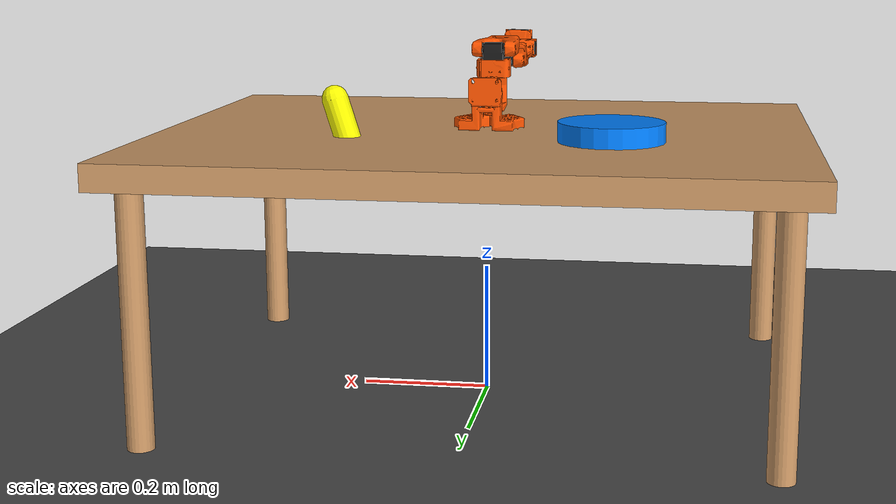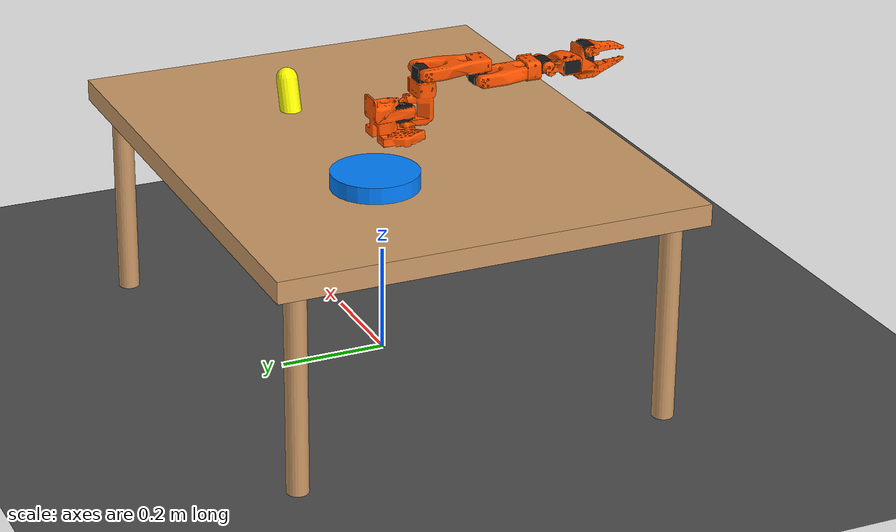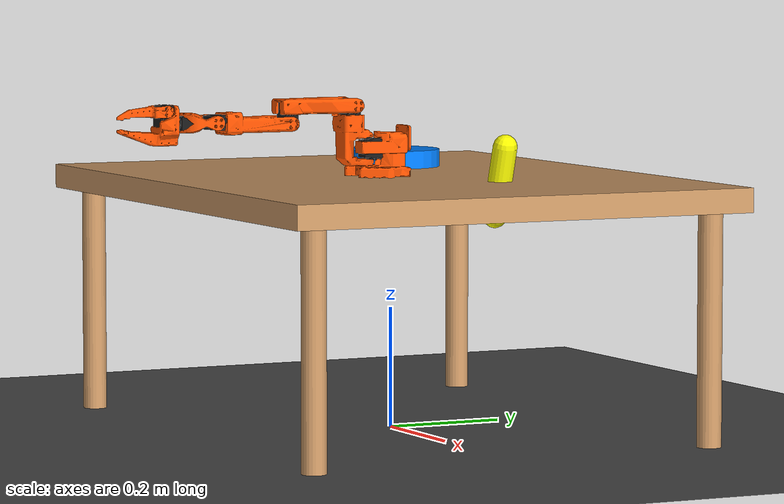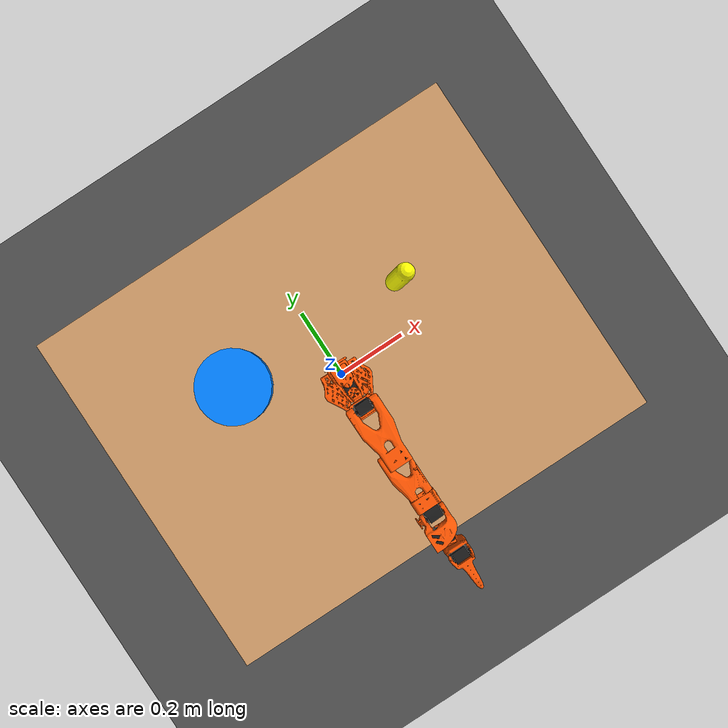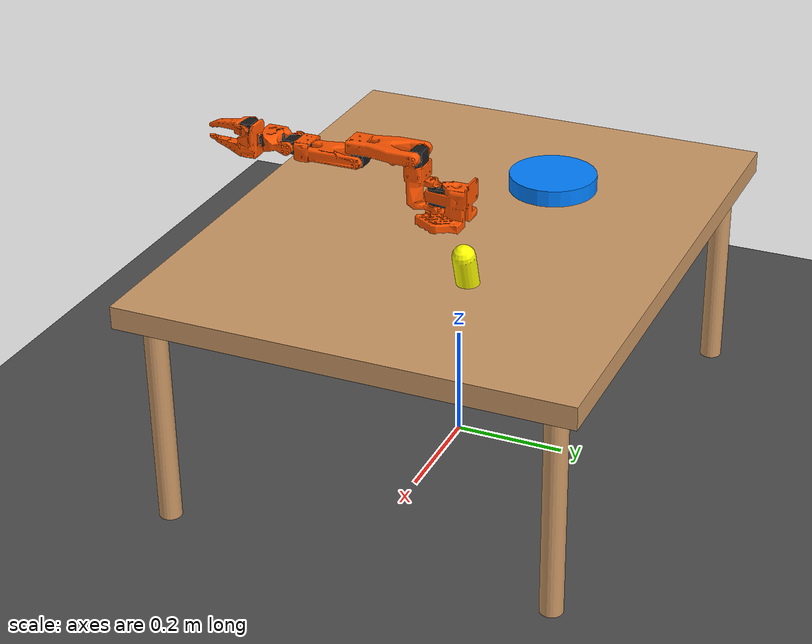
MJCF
<mujoco model="so_arm100">
  <compiler angle="radian" meshdir="assets/"/>

  <option impratio="10" cone="elliptic"/>

  <size nkey="1"/>

  <default>
    <default class="so_arm100">
      <joint armature="0.1" frictionloss="0.1"/>
      <general ctrlrange="-3.14158 3.14158" forcerange="-35 35" biastype="affine" gainprm="50" biasprm="0 -50 1"/>
      <default class="Rotation">
        <joint range="-2.2 2.2"/>
      </default>
      <default class="Pitch">
        <joint range="-3.14158 0.2"/>
      </default>
      <default class="Elbow">
        <joint range="0 3.14158"/>
      </default>
      <default class="Wrist_Pitch">
        <joint range="-2 1.8"/>
      </default>
      <default class="Wrist_Roll">
        <joint range="-3.14158 3.14158"/>
      </default>
      <default class="Jaw">
        <joint range="-0.2 2"/>
      </default>
      <default class="visual">
        <geom type="mesh" contype="0" conaffinity="0" group="2" density="0" material="orange"/>
        <default class="motor_visual">
          <geom material="black"/>
        </default>
      </default>
      <default class="collision">
        <geom type="mesh" group="3"/>
        <default class="finger_collision">
          <geom type="box" solref="0.01" solimp="2 1 0.01"/>
        </default>
      </default>
    </default>
  </default>

  <asset>
    <material name="orange" specular="0.1" shininess="0.1" rgba="1 0.331 0 1"/>
    <material name="black" specular="0.1" shininess="0.1" rgba="0.1 0.1 0.1 1"/>
    <mesh name="Base" file="Base.stl"/>
    <mesh name="Base_Motor" file="Base_Motor.stl"/>
    <mesh name="Rotation_Pitch" file="Rotation_Pitch.stl"/>
    <mesh name="Rotation_Pitch_Motor" file="Rotation_Pitch_Motor.stl"/>
    <mesh name="Upper_Arm" file="Upper_Arm.stl"/>
    <mesh name="Upper_Arm_Motor" file="Upper_Arm_Motor.stl"/>
    <mesh name="Lower_Arm" file="Lower_Arm.stl"/>
    <mesh name="Lower_Arm_Motor" file="Lower_Arm_Motor.stl"/>
    <mesh name="Wrist_Pitch_Roll" file="Wrist_Pitch_Roll.stl"/>
    <mesh name="Wrist_Pitch_Roll_Motor" file="Wrist_Pitch_Roll_Motor.stl"/>
    <mesh name="Fixed_Jaw" file="Fixed_Jaw.stl"/>
    <mesh name="Fixed_Jaw_Motor" file="Fixed_Jaw_Motor.stl"/>
    <mesh name="Fixed_Jaw_Collision_1" file="Fixed_Jaw_Collision_1.stl"/>
    <mesh name="Fixed_Jaw_Collision_2" file="Fixed_Jaw_Collision_2.stl"/>
    <mesh name="Moving_Jaw" file="Moving_Jaw.stl"/>
    <mesh name="Moving_Jaw_Collision_1" file="Moving_Jaw_Collision_1.stl"/>
    <mesh name="Moving_Jaw_Collision_2" file="Moving_Jaw_Collision_2.stl"/>
    <mesh name="Moving_Jaw_Collision_3" file="Moving_Jaw_Collision_3.stl"/>
  </asset>

  <worldbody>
    <geom name="floor" size="3 3 0.1" type="plane" rgba="0.3 0.3 0.3 1"/>
    <camera name="overhead_cam" pos="0 -0.2 1.0"/>
    <camera name="worms_eye_cam" pos="0 0 0.1"/>
    <light name="light1" pos="0 0 3" dir="0 0 -1" ambient="0.3 0.3 0.3"/>
    <light name="light2" pos="2 2 2" dir="-0.57735 -0.57735 -0.57735" diffuse="0.4 0.4 0.4"/>
    <body name="Base" childclass="so_arm100" pos="0 0 0.42">
      <geom class="visual" mesh="Base"/>
      <geom class="motor_visual" mesh="Base_Motor"/>
      <geom class="collision" mesh="Base"/>
      <body name="Rotation_Pitch" pos="0 -0.0452 0.0165" quat="0.707105 0.707108 0 0">
        <inertial pos="-9.07886e-05 0.0590972 0.031089" quat="0.363978 0.441169 -0.623108 0.533504" mass="0.119226" diaginertia="5.94278e-05 5.89975e-05 3.13712e-05"/>
        <joint name="Rotation" class="Rotation" pos="0 0 0" axis="0 1 0"/>
        <geom class="visual" mesh="Rotation_Pitch"/>
        <geom class="motor_visual" mesh="Rotation_Pitch_Motor"/>
        <geom class="collision" mesh="Rotation_Pitch"/>
        <body name="Upper_Arm" pos="0 0.1025 0.0306" quat="0.707109 0.707105 0 0">
          <inertial pos="-1.72052e-05 0.0701802 0.00310545" quat="0.50104 0.498994 -0.493562 0.50632" mass="0.162409" diaginertia="0.000213312 0.000167164 7.01522e-05"/>
          <joint name="Pitch" class="Pitch" pos="0 0 0" axis="1 0 0"/>
          <geom class="visual" mesh="Upper_Arm"/>
          <geom class="motor_visual" mesh="Upper_Arm_Motor"/>
          <geom class="collision" mesh="Upper_Arm"/>
          <body name="Lower_Arm" pos="0 0.11257 0.028" quat="0.707109 -0.707105 0 0">
            <inertial pos="-0.00339604 0.00137796 0.0768007" quat="0.701995 0.0787996 0.0645626 0.704859" mass="0.147968" diaginertia="0.000138803 0.000107748 4.84242e-05"/>
            <joint name="Elbow" class="Elbow" pos="0 0 0" axis="1 0 0"/>
            <geom class="visual" mesh="Lower_Arm"/>
            <geom class="motor_visual" mesh="Lower_Arm_Motor"/>
            <geom class="collision" mesh="Lower_Arm"/>
            <body name="Wrist_Pitch_Roll" pos="0 0.0052 0.1349" quat="0.707109 -0.707105 0 0">
              <inertial pos="-0.00852653 -0.0352279 -2.34622e-05" quat="-0.0522806 0.705235 0.0549524 0.704905" mass="0.0661321" diaginertia="3.45403e-05 2.39041e-05 1.94704e-05"/>
              <joint name="Wrist_Pitch" class="Wrist_Pitch" pos="0 0 0" axis="1 0 0"/>
              <geom class="visual" mesh="Wrist_Pitch_Roll"/>
              <geom class="motor_visual" mesh="Wrist_Pitch_Roll_Motor"/>
              <geom class="collision" mesh="Wrist_Pitch_Roll"/>
              <body name="Fixed_Jaw" pos="0 -0.0601 0" quat="0.707109 0 0.707105 0">
                <inertial pos="0.00552377 -0.0280167 0.000483583" quat="0.41836 0.620891 -0.350644 0.562599" mass="0.0929859" diaginertia="5.03136e-05 4.64098e-05 2.72961e-05"/>
                <joint name="Wrist_Roll" class="Wrist_Roll" pos="0 0 0" axis="0 1 0"/>
                <geom class="visual" mesh="Fixed_Jaw"/>
                <geom class="motor_visual" mesh="Fixed_Jaw_Motor"/>
                <geom class="collision" mesh="Fixed_Jaw_Collision_1"/>
                <geom class="collision" mesh="Fixed_Jaw_Collision_2"/>
                <geom name="fixed_jaw_pad_1" class="finger_collision" size="0.001 0.005 0.004" pos="0.0089 -0.1014 0"/>
                <geom name="fixed_jaw_pad_2" class="finger_collision" size="0.001 0.005 0.006" pos="0.0109 -0.0914 0"/>
                <geom name="fixed_jaw_pad_3" class="finger_collision" size="0.001 0.01 0.007" pos="0.0126 -0.0768 0"/>
                <geom name="fixed_jaw_pad_4" class="finger_collision" size="0.001 0.01 0.008" pos="0.0143 -0.0572 0"/>
                <camera name="wrist_cam" pos="0 0.02 0.04" xyaxes="1 0 0 0 -0.5 0.87" fovy="70"/>
                <body name="Moving_Jaw" pos="-0.0202 -0.0244 0" quat="1.34924e-11 -3.67321e-06 1 -3.67321e-06">
                  <inertial pos="-0.00161745 -0.0303473 0.000449646" quat="0.696562 0.716737 -0.0239844 -0.0227026" mass="0.0202444" diaginertia="1.11265e-05 8.99651e-06 2.99548e-06"/>
                  <joint name="Jaw" class="Jaw" pos="0 0 0" axis="0 0 1"/>
                  <geom class="visual" mesh="Moving_Jaw"/>
                  <geom class="collision" mesh="Moving_Jaw_Collision_1"/>
                  <geom class="collision" mesh="Moving_Jaw_Collision_2"/>
                  <geom class="collision" mesh="Moving_Jaw_Collision_3"/>
                  <geom name="moving_jaw_pad_1" class="finger_collision" size="0.001 0.005 0.004" pos="-0.0113 -0.077 0"/>
                  <geom name="moving_jaw_pad_2" class="finger_collision" size="0.001 0.005 0.006" pos="-0.0093 -0.067 0"/>
                  <geom name="moving_jaw_pad_3" class="finger_collision" size="0.001 0.01 0.006" pos="-0.0073 -0.055 0"/>
                  <geom name="moving_jaw_pad_4" class="finger_collision" size="0.001 0.01 0.008" pos="-0.0073 -0.035 0"/>
                </body>
              </body>
            </body>
          </body>
        </body>
      </body>
    </body>
    <body name="table" pos="0 0 0.4">
      <geom name="table_surface" size="0.5 0.4 0.02" type="box" rgba="0.8 0.6 0.4 1"/>
      <geom name="table_leg_0" size="0.02 0.2" pos="0.45 0.35 -0.2" type="cylinder" rgba="0.8 0.6 0.4 1"/>
      <geom name="table_leg_1" size="0.02 0.2" pos="0.45 -0.35 -0.2" type="cylinder" rgba="0.8 0.6 0.4 1"/>
      <geom name="table_leg_2" size="0.02 0.2" pos="-0.45 0.35 -0.2" type="cylinder" rgba="0.8 0.6 0.4 1"/>
      <geom name="table_leg_3" size="0.02 0.2" pos="-0.45 -0.35 -0.2" type="cylinder" rgba="0.8 0.6 0.4 1"/>
      <camera name="side_cam" pos="0.4 -0.3 0.2" xyaxes="0.6 0.8 0 -0.32 0.24 0.92"/>
      <camera name="front_cam" pos="0 -0.45 0.5" xyaxes="1 0 0 0 0.707 0.707"/>
    </body>
    <body name="banana" pos="0.2 0.1 0.42">
      <geom name="banana" size="0.02 0.06" quat="0.988771 0 0.149438 0" type="capsule" rgba="1 1 0 1"/>
    </body>
    <body name="bowl" pos="-0.2 0.1 0.42">
      <geom name="bowl" size="0.08 0.03" type="cylinder" rgba="0 0.5 1 1"/>
    </body>
  </worldbody>

  <contact>
    <exclude body1="Base" body2="Rotation_Pitch"/>
  </contact>

  <actuator>
    <general name="Rotation" class="Rotation" joint="Rotation"/>
    <general name="Pitch" class="Pitch" joint="Pitch"/>
    <general name="Elbow" class="Elbow" joint="Elbow"/>
    <general name="Wrist_Pitch" class="Wrist_Pitch" joint="Wrist_Pitch"/>
    <general name="Wrist_Roll" class="Wrist_Roll" joint="Wrist_Roll"/>
    <general name="Jaw" class="Jaw" joint="Jaw"/>
  </actuator>

</mujoco>
